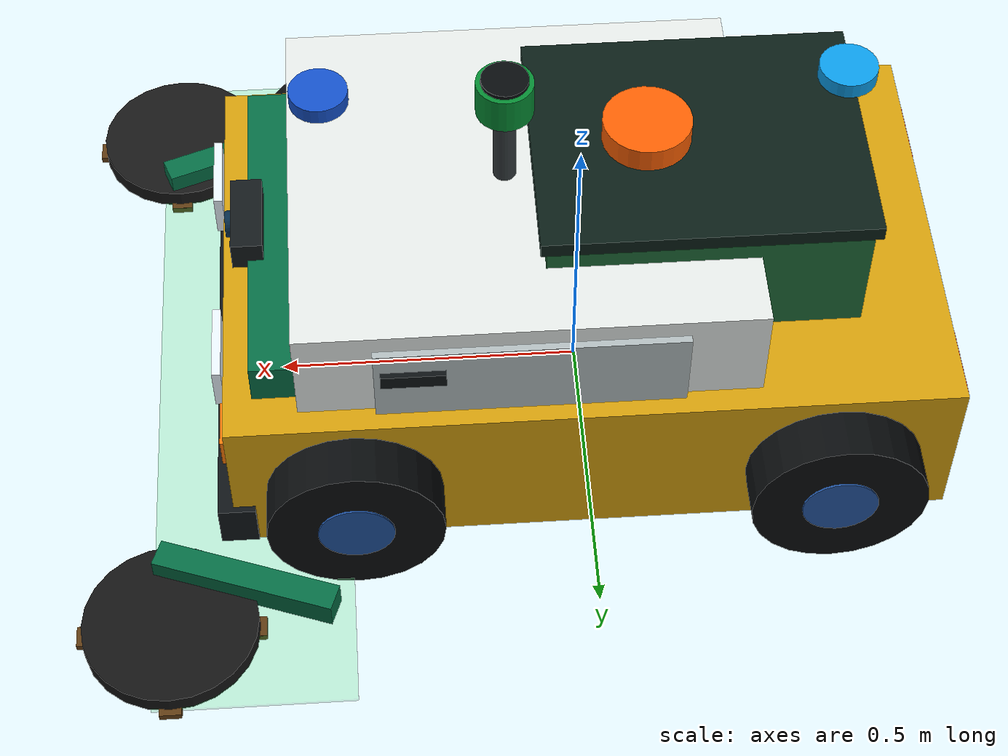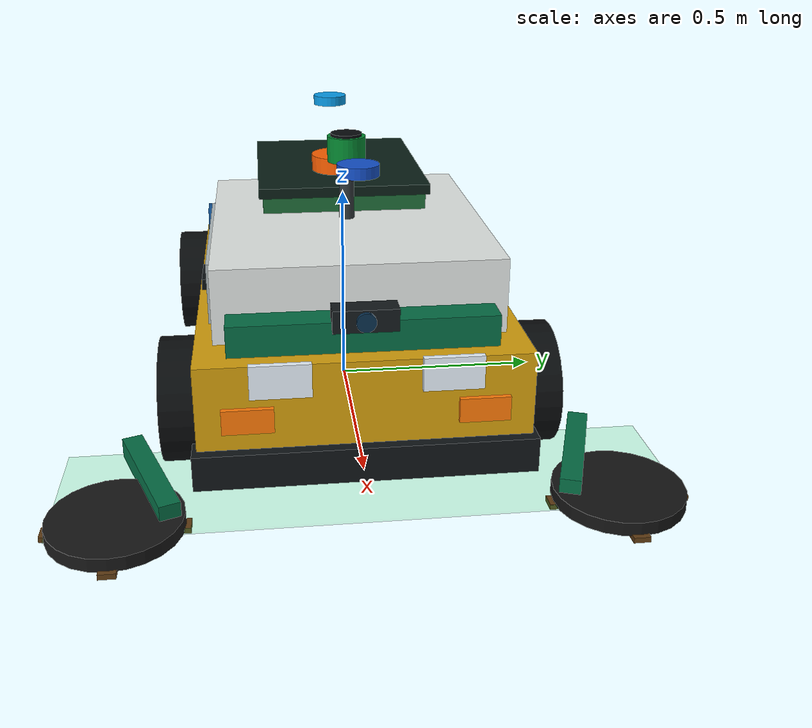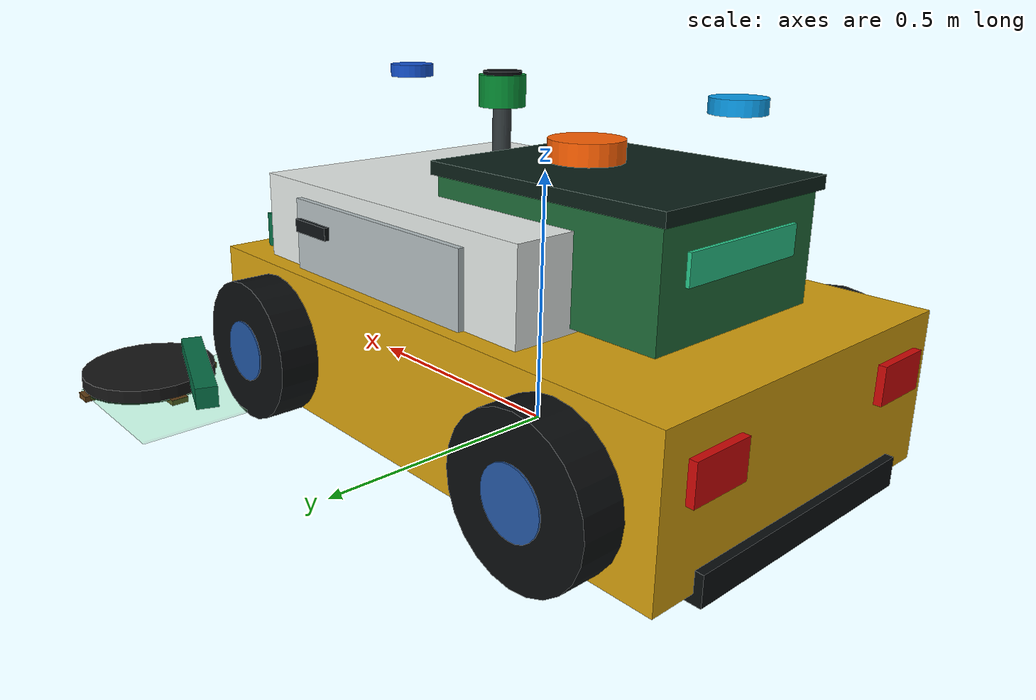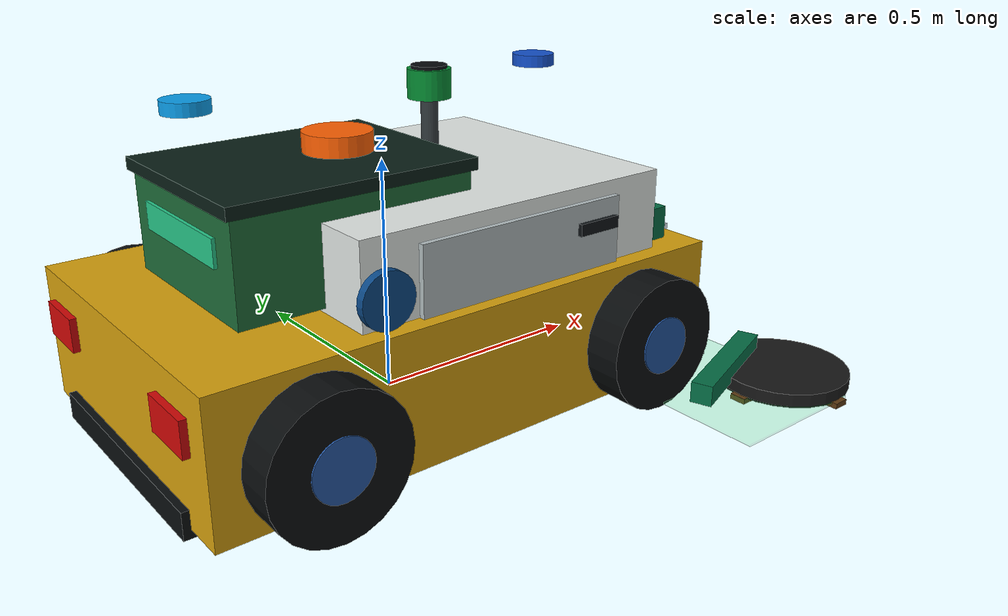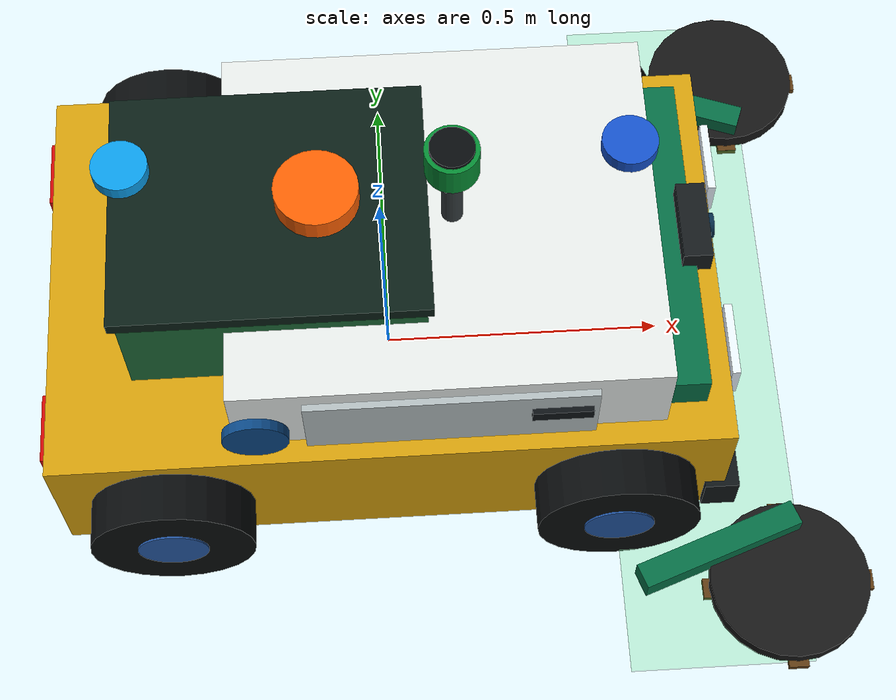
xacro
<?xml version="1.0"?>
<robot name="sanitation_vehicle" xmlns:xacro="http://ros.org/wiki/xacro">

  <!-- Reuse maintained Linorobot2 macros without modifying upstream source. -->
  <xacro:include filename="$(find linorobot2_description)/urdf/sensors/imu.urdf.xacro"/>
  <xacro:include filename="$(find linorobot2_description)/urdf/controllers/skid_steer.urdf.xacro"/>
  <xacro:include filename="$(find sanitation_vehicle_description)/urdf/sanitation_manipulator.urdf.xacro"/>

  <!-- Stage4S separates physical geometry from the DiffDrive estimator / command
       model. Defaults reproduce the Stage4R vehicle exactly. -->
  <xacro:arg name="drive_model" default="ackermann"/>
  <xacro:property name="drive_model_name" value="$(arg drive_model)"/>
  <xacro:if value="${drive_model_name != 'ackermann' and drive_model_name != 'skid_steer_legacy'}">
    <!-- Deliberately undefined: direct xacro use must fail closed for an invalid profile. -->
    <xacro:invalid_drive_model_selection/>
  </xacro:if>
  <xacro:arg name="physical_wheel_radius" default="0.14"/>
  <xacro:arg name="physical_track_width" default="0.80"/>
  <xacro:arg name="drive_wheel_radius" default="0.14"/>
  <xacro:arg name="drive_wheel_separation" default="0.80"/>
  <xacro:arg name="wheel_mu_longitudinal" default="1.0"/>
  <xacro:arg name="wheel_mu_lateral" default="1.0"/>
  <xacro:arg name="slip_compliance_longitudinal" default="0.0"/>
  <xacro:arg name="slip_compliance_lateral" default="0.0"/>
  <xacro:arg name="enable_wheel_slip" default="false"/>
  <xacro:arg name="lidar_samples" default="360"/>
  <xacro:arg name="lidar_update_rate" default="10"/>
  <!-- Frozen dual-antenna GNSS geometry. Gazebo publishes raw NavSat sensor
       measurements; the ROS adapter applies the deterministic RTK profile. -->
  <xacro:arg name="gnss_baseline_m" default="0.80"/>
  <xacro:arg name="gnss_update_rate" default="10"/>
  <!-- Product cleaning envelope: two physical 0.14 m side brushes deployed
       at +/-0.52 m produce a truthful 1.32 m effective width. -->
  <xacro:arg name="cleaning_width" default="1.32"/>
  <xacro:arg name="brush_center_y" default="0.52"/>
  <xacro:arg name="brush_forward_x" default="0.68"/>
  <!-- Offline G2 capture only. Production launch never overrides this false default. -->
  <xacro:arg name="enable_training_gt" default="false"/>
  <!-- Stage5BR4 camera ablation. Defaults are the frozen C0 production candidate. -->
  <xacro:arg name="camera_x" default="0.53"/>
  <xacro:arg name="camera_y" default="0.0"/>
  <xacro:arg name="camera_z" default="0.22"/>
  <xacro:arg name="camera_pitch_rad" default="0.0"/>
  <xacro:arg name="enable_verification_camera" default="false"/>
  <xacro:arg name="verification_camera_update_rate" default="5"/>
  <xacro:arg name="enable_self_mask_gt" default="false"/>
  <xacro:arg name="enable_manipulator" default="false"/>
  <xacro:arg name="verification_camera_x" default="0.30"/>
  <xacro:arg name="verification_camera_y" default="0.0"/>
  <xacro:arg name="verification_camera_z" default="0.70"/>
  <!-- Gazebo camera optical +X needs positive URDF Y rotation to look down;
       the external camera spec continues to report conventional negative pitch. -->
  <xacro:arg name="verification_camera_pitch_rad" default="0.7853981634"/>
  <xacro:arg name="verification_camera_yaw_rad" default="0.0"/>

  <!-- Baseline geometry; replace with measured real vehicle values later. -->
  <xacro:property name="base_length" value="1.15"/>
  <xacro:property name="base_width" value="0.72"/>
  <xacro:property name="base_height" value="0.28"/>
  <xacro:property name="base_mass" value="80.0"/>
  <xacro:property name="physical_wheel_radius" value="$(arg physical_wheel_radius)"/>
  <xacro:property name="physical_track_width" value="$(arg physical_track_width)"/>
  <xacro:property name="drive_wheel_radius" value="$(arg drive_wheel_radius)"/>
  <xacro:property name="drive_wheel_separation" value="$(arg drive_wheel_separation)"/>
  <xacro:property name="wheel_mu_longitudinal" value="$(arg wheel_mu_longitudinal)"/>
  <xacro:property name="wheel_mu_lateral" value="$(arg wheel_mu_lateral)"/>
  <xacro:property name="slip_compliance_longitudinal" value="$(arg slip_compliance_longitudinal)"/>
  <xacro:property name="slip_compliance_lateral" value="$(arg slip_compliance_lateral)"/>
  <xacro:property name="wheel_width" value="0.08"/>
  <xacro:property name="wheel_pos_x" value="0.38"/>
  <xacro:property name="wheel_pos_y" value="${physical_track_width / 2.0}"/>
  <xacro:property name="wheel_pos_z" value="-0.02"/>
  <xacro:property name="wheel_mass" value="3.0"/>
  <xacro:property name="cleaning_width" value="$(arg cleaning_width)"/>
  <xacro:property name="brush_center_y" value="$(arg brush_center_y)"/>
  <xacro:property name="brush_forward_x" value="$(arg brush_forward_x)"/>
  <xacro:property name="lidar_samples" value="$(arg lidar_samples)"/>
  <xacro:property name="lidar_update_rate" value="$(arg lidar_update_rate)"/>
  <xacro:property name="gnss_baseline_m" value="$(arg gnss_baseline_m)"/>
  <xacro:property name="gnss_update_rate" value="$(arg gnss_update_rate)"/>

  <!-- Local primitive chassis avoids the upstream Gazebo-classic visual
       override colliding with URDF materials in Ogre2 / Gazebo Harmonic. -->
  <link name="base_footprint"/>
  <link name="base_link">
    <visual name="lower_chassis_visual">
      <geometry><box size="${base_length} ${base_width} ${base_height}"/></geometry>
      <material name="sanitation_chassis_yellow">
        <color rgba="0.84 0.63 0.05 1.0"/>
      </material>
    </visual>
    <visual name="upper_body_visual">
      <origin xyz="0.10 0 0.20" rpy="0 0 0"/>
      <geometry><box size="0.72 0.64 0.22"/></geometry>
      <material name="sanitation_body_white">
        <color rgba="0.90 0.92 0.91 1.0"/>
      </material>
    </visual>
    <visual name="front_service_panel_visual">
      <origin xyz="0.49 0 0.12" rpy="0 0 0"/>
      <geometry><box size="0.08 0.58 0.18"/></geometry>
      <material name="sanitation_service_green">
        <color rgba="0.02 0.43 0.27 1.0"/>
      </material>
    </visual>
    <visual name="front_bumper_visual">
      <origin xyz="0.57 0 -0.09" rpy="0 0 0"/>
      <geometry><box size="0.06 0.74 0.08"/></geometry>
      <material name="sanitation_bumper_dark">
        <color rgba="0.06 0.08 0.09 1.0"/>
      </material>
    </visual>
    <visual name="left_marker_visual">
      <origin xyz="0.582 0.25 0.02" rpy="0 0 0"/>
      <geometry><box size="0.012 0.11 0.055"/></geometry>
      <material name="sanitation_marker_amber">
        <color rgba="1.0 0.48 0.03 1.0"/>
      </material>
    </visual>
    <visual name="right_marker_visual">
      <origin xyz="0.582 -0.25 0.02" rpy="0 0 0"/>
      <geometry><box size="0.012 0.11 0.055"/></geometry>
      <material name="sanitation_marker_amber_right">
        <color rgba="1.0 0.48 0.03 1.0"/>
      </material>
    </visual>
    <visual name="left_headlamp_visual">
      <origin xyz="0.585 0.18 0.11" rpy="0 0 0"/>
      <geometry><box size="0.014 0.13 0.075"/></geometry>
      <material name="headlamp_white"><color rgba="0.92 0.96 1.0 1.0"/></material>
    </visual>
    <visual name="right_headlamp_visual">
      <origin xyz="0.585 -0.18 0.11" rpy="0 0 0"/>
      <geometry><box size="0.014 0.13 0.075"/></geometry>
      <material name="headlamp_white_right"><color rgba="0.92 0.96 1.0 1.0"/></material>
    </visual>
    <visual name="left_rear_lamp_visual">
      <origin xyz="-0.585 0.25 0.05" rpy="0 0 0"/>
      <geometry><box size="0.014 0.12 0.07"/></geometry>
      <material name="rear_lamp_red"><color rgba="0.82 0.03 0.025 1.0"/></material>
    </visual>
    <visual name="right_rear_lamp_visual">
      <origin xyz="-0.585 -0.25 0.05" rpy="0 0 0"/>
      <geometry><box size="0.014 0.12 0.07"/></geometry>
      <material name="rear_lamp_red_right"><color rgba="0.82 0.03 0.025 1.0"/></material>
    </visual>
    <visual name="left_access_door_visual">
      <origin xyz="0.10 0.326 0.20" rpy="0 0 0"/>
      <geometry><box size="0.48 0.012 0.16"/></geometry>
      <material name="access_door_gray"><color rgba="0.70 0.74 0.75 1.0"/></material>
    </visual>
    <visual name="right_access_door_visual">
      <origin xyz="0.10 -0.326 0.20" rpy="0 0 0"/>
      <geometry><box size="0.48 0.012 0.16"/></geometry>
      <material name="access_door_gray_right"><color rgba="0.70 0.74 0.75 1.0"/></material>
    </visual>
    <visual name="left_door_handle_visual">
      <origin xyz="0.28 0.334 0.23" rpy="0 0 0"/>
      <geometry><box size="0.10 0.016 0.025"/></geometry>
      <material name="door_handle_dark"><color rgba="0.05 0.07 0.08 1.0"/></material>
    </visual>
    <visual name="right_door_handle_visual">
      <origin xyz="0.28 -0.334 0.23" rpy="0 0 0"/>
      <geometry><box size="0.10 0.016 0.025"/></geometry>
      <material name="door_handle_dark_right"><color rgba="0.05 0.07 0.08 1.0"/></material>
    </visual>
    <visual name="charging_port_visual">
      <origin xyz="-0.22 -0.337 0.20" rpy="${pi / 2.0} 0 0"/>
      <geometry><cylinder radius="0.055" length="0.018"/></geometry>
      <material name="charging_port_blue"><color rgba="0.04 0.28 0.52 1.0"/></material>
    </visual>
    <visual name="roof_safety_beacon_visual">
      <origin xyz="-0.10 0 0.36" rpy="0 0 0"/>
      <geometry><cylinder radius="0.07" length="0.11"/></geometry>
      <material name="safety_beacon_amber"><color rgba="1.0 0.38 0.01 0.95"/></material>
    </visual>
    <visual name="rear_suction_intake_visual">
      <origin xyz="-0.50 0 -0.13" rpy="0 0 0"/>
      <geometry><box size="0.18 0.54 0.055"/></geometry>
      <material name="suction_intake_dark"><color rgba="0.035 0.05 0.055 1.0"/></material>
    </visual>
    <visual name="left_safety_stripe_visual">
      <origin xyz="-0.23 0.337 0.08" rpy="0 0 0"/>
      <geometry><box size="0.32 0.010 0.055"/></geometry>
      <material name="safety_stripe_green"><color rgba="0.02 0.52 0.30 1.0"/></material>
    </visual>
    <visual name="right_safety_stripe_visual">
      <origin xyz="-0.23 -0.337 0.08" rpy="0 0 0"/>
      <geometry><box size="0.32 0.010 0.055"/></geometry>
      <material name="safety_stripe_green_right"><color rgba="0.02 0.52 0.30 1.0"/></material>
    </visual>
    <collision name="lower_chassis_collision">
      <geometry>
        <box size="${base_length if drive_model_name == 'skid_steer_legacy' else 0.44} ${base_width} ${base_height}"/>
      </geometry>
    </collision>
    <xacro:if value="${drive_model_name == 'ackermann'}">
      <collision name="lower_chassis_front_stub_collision">
        <origin xyz="0.3975 0 0" rpy="0 0 0"/>
        <geometry><box size="0.355 0.52 0.28"/></geometry>
      </collision>
      <collision name="lower_chassis_rear_stub_collision">
        <origin xyz="-0.3975 0 0" rpy="0 0 0"/>
        <geometry><box size="0.355 0.52 0.28"/></geometry>
      </collision>
    </xacro:if>
    <collision name="upper_body_collision">
      <origin xyz="0.10 0 0.20" rpy="0 0 0"/>
      <geometry><box size="0.72 0.64 0.22"/></geometry>
    </collision>
    <inertial>
      <mass value="${base_mass}"/>
      <inertia
        ixx="${(base_mass / 12.0) * (base_width**2 + base_height**2)}"
        ixy="0" ixz="0"
        iyy="${(base_mass / 12.0) * (base_length**2 + base_height**2)}"
        iyz="0"
        izz="${(base_mass / 12.0) * (base_length**2 + base_width**2)}"/>
    </inertial>
  </link>
  <joint name="base_to_footprint" type="fixed">
    <parent link="base_footprint"/>
    <child link="base_link"/>
    <origin xyz="0 0 ${physical_wheel_radius - wheel_pos_z}" rpy="0 0 0"/>
  </joint>

  <xacro:macro name="sanitation_wheel" params="side pos_x pos_y red green blue">
    <link name="${side}_wheel_link">
      <visual name="tire_visual">
        <origin rpy="${pi / 2.0} 0 0"/>
        <geometry><cylinder radius="${physical_wheel_radius}" length="${wheel_width}"/></geometry>
        <material name="${side}_wheel_material">
          <color rgba="0.035 0.045 0.05 1.0"/>
        </material>
      </visual>
      <visual name="hub_visual">
        <origin rpy="${pi / 2.0} 0 0"/>
        <geometry><cylinder radius="${physical_wheel_radius * 0.43}" length="${wheel_width + 0.006}"/></geometry>
        <material name="${side}_hub_material">
          <color rgba="${red} ${green} ${blue} 1.0"/>
        </material>
      </visual>
      <collision>
        <origin rpy="${pi / 2.0} 0 0"/>
        <geometry><cylinder radius="${physical_wheel_radius}" length="${wheel_width}"/></geometry>
      </collision>
      <inertial>
        <mass value="${wheel_mass}"/>
        <inertia
          ixx="${(wheel_mass / 12.0) * (3.0 * physical_wheel_radius**2 + wheel_width**2)}"
          ixy="0" ixz="0"
          iyy="${0.5 * wheel_mass * physical_wheel_radius**2}"
          iyz="0"
          izz="${(wheel_mass / 12.0) * (3.0 * physical_wheel_radius**2 + wheel_width**2)}"/>
      </inertial>
    </link>
    <joint name="${side}_wheel_joint" type="continuous">
      <axis xyz="0 1 0"/>
      <parent link="base_link"/>
      <child link="${side}_wheel_link"/>
      <origin xyz="${pos_x} ${pos_y} ${wheel_pos_z}" rpy="0 0 0"/>
    </joint>
    <gazebo reference="${side}_wheel_link">
      <mu1>${wheel_mu_longitudinal}</mu1>
      <mu2>${wheel_mu_lateral}</mu2>
    </gazebo>
  </xacro:macro>

  <xacro:macro name="sanitation_ackermann_wheel" params="side pos_x pos_y steered parent_link red green blue">
    <link name="${side}_wheel_link">
      <visual name="tire_visual">
        <geometry><cylinder radius="${physical_wheel_radius}" length="${wheel_width}"/></geometry>
        <material name="${side}_wheel_material">
          <color rgba="0.035 0.045 0.05 1.0"/>
        </material>
      </visual>
      <visual name="hub_visual">
        <geometry><cylinder radius="${physical_wheel_radius * 0.43}" length="${wheel_width + 0.006}"/></geometry>
        <material name="${side}_hub_material">
          <color rgba="${red} ${green} ${blue} 1.0"/>
        </material>
      </visual>
      <collision>
        <geometry><cylinder radius="${physical_wheel_radius}" length="${wheel_width}"/></geometry>
      </collision>
      <inertial>
        <mass value="${wheel_mass}"/>
        <inertia
          ixx="${(wheel_mass / 12.0) * (3.0 * physical_wheel_radius**2 + wheel_width**2)}"
          ixy="0" ixz="0"
          iyy="${(wheel_mass / 12.0) * (3.0 * physical_wheel_radius**2 + wheel_width**2)}"
          iyz="0"
          izz="${0.5 * wheel_mass * physical_wheel_radius**2}"/>
      </inertial>
    </link>
    <xacro:if value="${steered}">
      <link name="${side}_steering_link">
        <inertial>
          <mass value="1.0"/>
          <inertia ixx="0.004" ixy="0" ixz="0" iyy="0.004" iyz="0" izz="0.006"/>
        </inertial>
      </link>
      <joint name="${side}_steering_joint" type="revolute">
        <axis xyz="0 0 1"/>
        <parent link="base_link"/>
        <child link="${side}_steering_link"/>
        <origin xyz="${pos_x} ${pos_y} ${wheel_pos_z}" rpy="0 0 0"/>
        <limit lower="-0.671951764" upper="0.671951764" effort="40.0" velocity="0.8"/>
        <dynamics damping="0.5"/>
      </joint>
    </xacro:if>
    <joint name="${side}_wheel_joint" type="continuous">
      <axis xyz="0 0 1"/>
      <parent link="${parent_link}"/>
      <child link="${side}_wheel_link"/>
      <xacro:if value="${steered}">
        <origin xyz="0 0 0" rpy="${-pi / 2.0} 0 0"/>
      </xacro:if>
      <xacro:if value="${not steered}">
        <origin xyz="${pos_x} ${pos_y} ${wheel_pos_z}" rpy="${-pi / 2.0} 0 0"/>
      </xacro:if>
      <limit effort="30.0" velocity="30.0"/>
      <dynamics damping="0.01"/>
    </joint>
    <gazebo reference="${side}_wheel_link">
      <mu1>0.5</mu1>
      <mu2>${wheel_mu_longitudinal}</mu2>
      <!-- Geometry, joint and contact friction share the wheel-local Z axle,
           matching Gazebo's reference Ackermann model. -->
      <fdir1>0 0 1</fdir1>
    </gazebo>
  </xacro:macro>

  <xacro:if value="${drive_model_name == 'skid_steer_legacy'}">
    <xacro:sanitation_wheel side="front_left" pos_x="${wheel_pos_x}" pos_y="${wheel_pos_y}"
      red="0.12" green="0.32" blue="0.62"/>
    <xacro:sanitation_wheel side="front_right" pos_x="${wheel_pos_x}" pos_y="${-wheel_pos_y}"
      red="0.13" green="0.33" blue="0.63"/>
    <xacro:sanitation_wheel side="rear_left" pos_x="${-wheel_pos_x}" pos_y="${wheel_pos_y}"
      red="0.14" green="0.34" blue="0.64"/>
    <xacro:sanitation_wheel side="rear_right" pos_x="${-wheel_pos_x}" pos_y="${-wheel_pos_y}"
      red="0.15" green="0.35" blue="0.65"/>
  </xacro:if>
  <xacro:if value="${drive_model_name == 'ackermann'}">
    <xacro:sanitation_ackermann_wheel side="front_left" pos_x="${wheel_pos_x}" pos_y="${wheel_pos_y}"
      steered="true" parent_link="front_left_steering_link" red="0.12" green="0.32" blue="0.62"/>
    <xacro:sanitation_ackermann_wheel side="front_right" pos_x="${wheel_pos_x}" pos_y="${-wheel_pos_y}"
      steered="true" parent_link="front_right_steering_link" red="0.13" green="0.33" blue="0.63"/>
    <xacro:sanitation_ackermann_wheel side="rear_left" pos_x="${-wheel_pos_x}" pos_y="${wheel_pos_y}"
      steered="false" parent_link="base_link" red="0.14" green="0.34" blue="0.64"/>
    <xacro:sanitation_ackermann_wheel side="rear_right" pos_x="${-wheel_pos_x}" pos_y="${-wheel_pos_y}"
      steered="false" parent_link="base_link" red="0.15" green="0.35" blue="0.65"/>
  </xacro:if>

  <xacro:imu/>

  <xacro:macro name="sanitation_navsat_antenna" params="name x topic color">
    <link name="gnss_${name}_link">
      <visual name="gnss_${name}_visual">
        <geometry><cylinder radius="0.045" length="0.025"/></geometry>
        <material name="gnss_${name}_material"><color rgba="${color}"/></material>
      </visual>
      <inertial>
        <mass value="0.05"/>
        <inertia ixx="0.000012" ixy="0" ixz="0" iyy="0.000012" iyz="0" izz="0.000020"/>
      </inertial>
    </link>
    <joint name="gnss_${name}_joint" type="fixed">
      <parent link="base_link"/>
      <child link="gnss_${name}_link"/>
      <origin xyz="${x} 0 0.50" rpy="0 0 0"/>
    </joint>
    <gazebo reference="gnss_${name}_link">
      <sensor name="gnss_${name}_navsat" type="navsat">
        <topic>${topic}</topic>
        <update_rate>${gnss_update_rate}</update_rate>
        <always_on>true</always_on>
      </sensor>
    </gazebo>
  </xacro:macro>

  <xacro:sanitation_navsat_antenna
    name="front" x="${gnss_baseline_m / 2.0}"
    topic="gnss/front/fix_raw" color="0.08 0.32 0.80 1.0"/>
  <xacro:sanitation_navsat_antenna
    name="rear" x="${-gnss_baseline_m / 2.0}"
    topic="gnss/rear/fix_raw" color="0.04 0.62 0.92 1.0"/>

  <link name="laser">
    <visual name="lidar_body_visual">
      <geometry><cylinder radius="0.045" length="0.06"/></geometry>
      <material name="sanitation_lidar_green"><color rgba="0.02 0.55 0.20 1.0"/></material>
    </visual>
    <visual name="lidar_cap_visual">
      <origin xyz="0 0 0.031" rpy="0 0 0"/>
      <geometry><cylinder radius="0.037" length="0.012"/></geometry>
      <material name="sanitation_lidar_cap"><color rgba="0.03 0.04 0.05 1.0"/></material>
    </visual>
    <visual name="lidar_mast_visual">
      <origin xyz="0 0 -0.115" rpy="0 0 0"/>
      <geometry><cylinder radius="0.018" length="0.17"/></geometry>
      <material name="sanitation_lidar_mast"><color rgba="0.20 0.23 0.24 1.0"/></material>
    </visual>
    <collision><geometry><cylinder radius="0.045" length="0.06"/></geometry></collision>
    <inertial>
      <mass value="0.1"/>
      <inertia ixx="0.00006" ixy="0" ixz="0" iyy="0.00006" iyz="0" izz="0.00010"/>
    </inertial>
  </link>
  <joint name="laser_to_base_link" type="fixed">
    <parent link="base_link"/>
    <child link="laser"/>
    <origin xyz="0.12 0 0.48" rpy="0 0 0"/>
  </joint>
  <gazebo reference="laser">
    <sensor name="sanitation_gpu_lidar" type="gpu_lidar">
      <topic>scan</topic>
      <update_rate>${lidar_update_rate}</update_rate>
      <always_on>true</always_on>
      <visualize>true</visualize>
      <lidar>
        <scan>
          <horizontal>
            <samples>${lidar_samples}</samples>
            <resolution>1</resolution>
            <min_angle>-3.1416</min_angle>
            <max_angle>3.1416</max_angle>
          </horizontal>
          <vertical>
            <samples>1</samples>
            <resolution>1</resolution>
            <min_angle>0.0</min_angle>
            <max_angle>0.0</max_angle>
          </vertical>
        </scan>
        <range><min>0.08</min><max>12.0</max><resolution>0.01</resolution></range>
      </lidar>
    </sensor>
  </gazebo>

  <link name="camera_link">
    <visual name="camera_housing_visual">
      <geometry><box size="0.05 0.14 0.05"/></geometry>
      <material name="sanitation_camera_housing"><color rgba="0.08 0.10 0.11 1.0"/></material>
    </visual>
    <visual name="camera_lens_visual">
      <origin xyz="0.028 0 0" rpy="0 ${pi / 2.0} 0"/>
      <geometry><cylinder radius="0.021" length="0.012"/></geometry>
      <material name="sanitation_camera_lens"><color rgba="0.03 0.18 0.30 1.0"/></material>
    </visual>
    <collision><geometry><box size="0.05 0.14 0.05"/></geometry></collision>
    <inertial>
      <mass value="0.135"/>
      <inertia ixx="0.00025" ixy="0" ixz="0" iyy="0.00006" iyz="0" izz="0.00025"/>
    </inertial>
  </link>
  <joint name="camera_to_base_link" type="fixed">
    <parent link="base_link"/>
    <child link="camera_link"/>
    <origin xyz="$(arg camera_x) $(arg camera_y) $(arg camera_z)" rpy="0 $(arg camera_pitch_rad) 0"/>
  </joint>
  <link name="camera_depth_link"/>
  <joint name="camera_depth_joint" type="fixed">
    <parent link="camera_link"/>
    <child link="camera_depth_link"/>
    <origin xyz="0 0 0" rpy="0 0 0"/>
  </joint>
  <gazebo reference="camera_link">
    <sensor name="sanitation_rgbd_camera" type="rgbd_camera">
      <topic>camera</topic>
      <update_rate>15</update_rate>
      <always_on>true</always_on>
      <visualize>true</visualize>
      <camera>
        <optical_frame_id>camera_depth_link</optical_frame_id>
        <horizontal_fov>1.50098</horizontal_fov>
        <image><width>640</width><height>480</height><format>R8G8B8</format></image>
        <clip><near>0.3</near><far>100</far></clip>
      </camera>
    </sensor>
    <xacro:if value="$(arg enable_training_gt)">
      <sensor name="g2_semantic_gt" type="segmentation">
        <topic>g2/semantic_gt</topic>
        <gz_frame_id>camera_depth_link</gz_frame_id>
        <update_rate>15</update_rate>
        <always_on>true</always_on>
        <camera>
          <segmentation_type>semantic</segmentation_type>
          <optical_frame_id>camera_depth_link</optical_frame_id>
          <horizontal_fov>1.50098</horizontal_fov>
          <image><width>640</width><height>480</height><format>R8G8B8</format></image>
          <clip><near>0.3</near><far>100</far></clip>
        </camera>
      </sensor>
      <sensor name="g2_instance_gt" type="segmentation">
        <topic>g2/instance_gt</topic>
        <gz_frame_id>camera_depth_link</gz_frame_id>
        <update_rate>15</update_rate>
        <always_on>true</always_on>
        <camera>
          <segmentation_type>instance</segmentation_type>
          <optical_frame_id>camera_depth_link</optical_frame_id>
          <horizontal_fov>1.50098</horizontal_fov>
          <image><width>640</width><height>480</height><format>R8G8B8</format></image>
          <clip><near>0.3</near><far>100</far></clip>
        </camera>
      </sensor>
    </xacro:if>
  </gazebo>

  <!-- C3 verification camera. It is physically and topically independent of
       the forward discovery camera and is absent from the production default. -->
  <xacro:if value="$(arg enable_verification_camera)">
    <link name="verification_camera_link">
      <visual>
        <geometry><box size="0.05 0.14 0.05"/></geometry>
        <material name="sanitation_verification_camera_blue"><color rgba="0.05 0.18 0.55 1.0"/></material>
      </visual>
      <collision><geometry><box size="0.05 0.14 0.05"/></geometry></collision>
      <inertial>
        <mass value="0.135"/>
        <inertia ixx="0.00025" ixy="0" ixz="0" iyy="0.00006" iyz="0" izz="0.00025"/>
      </inertial>
    </link>
    <joint name="verification_camera_to_base_link" type="fixed">
      <parent link="base_link"/>
      <child link="verification_camera_link"/>
      <origin xyz="$(arg verification_camera_x) $(arg verification_camera_y) $(arg verification_camera_z)"
              rpy="0 $(arg verification_camera_pitch_rad) $(arg verification_camera_yaw_rad)"/>
    </joint>
    <link name="verification_camera_depth_link"/>
    <joint name="verification_camera_depth_joint" type="fixed">
      <parent link="verification_camera_link"/>
      <child link="verification_camera_depth_link"/>
      <origin xyz="0 0 0" rpy="0 0 0"/>
    </joint>
    <gazebo reference="verification_camera_link">
      <sensor name="sanitation_verification_rgbd_camera" type="rgbd_camera">
        <topic>verification_camera</topic>
        <update_rate>$(arg verification_camera_update_rate)</update_rate><always_on>true</always_on><visualize>true</visualize>
        <camera>
          <optical_frame_id>verification_camera_depth_link</optical_frame_id>
          <horizontal_fov>1.50098</horizontal_fov>
          <image><width>640</width><height>480</height><format>R8G8B8</format></image>
          <clip><near>0.3</near><far>100</far></clip>
        </camera>
      </sensor>
      <xacro:if value="$(arg enable_training_gt)">
        <sensor name="g2_verification_semantic_gt" type="segmentation">
          <topic>g2/verification_semantic_gt</topic><gz_frame_id>verification_camera_depth_link</gz_frame_id>
          <update_rate>$(arg verification_camera_update_rate)</update_rate><always_on>true</always_on>
          <camera><segmentation_type>semantic</segmentation_type><optical_frame_id>verification_camera_depth_link</optical_frame_id><horizontal_fov>1.50098</horizontal_fov><image><width>640</width><height>480</height><format>R8G8B8</format></image><clip><near>0.3</near><far>100</far></clip></camera>
        </sensor>
        <sensor name="g2_verification_instance_gt" type="segmentation">
          <topic>g2/verification_instance_gt</topic><gz_frame_id>verification_camera_depth_link</gz_frame_id>
          <update_rate>$(arg verification_camera_update_rate)</update_rate><always_on>true</always_on>
          <camera><segmentation_type>instance</segmentation_type><optical_frame_id>verification_camera_depth_link</optical_frame_id><horizontal_fov>1.50098</horizontal_fov><image><width>640</width><height>480</height><format>R8G8B8</format></image><clip><near>0.3</near><far>100</far></clip></camera>
        </sensor>
      </xacro:if>
    </gazebo>
  </xacro:if>

  <!-- Exactly one joint command writer per profile. Ackermann loads the
       single gz-sim-ackermann-steering-system writer and never a DiffDrive;
       legacy keeps the frozen DiffDrive writer. -->
  <xacro:if value="${drive_model_name == 'skid_steer_legacy'}">
    <xacro:diff_drive_controller
      wheel_separation="${drive_wheel_separation}"
      wheel_radius="${drive_wheel_radius}"
    />
  </xacro:if>
  <xacro:if value="${drive_model_name == 'ackermann'}">
    <gazebo>
      <plugin filename="gz-sim-ackermann-steering-system" name="gz::sim::systems::AckermannSteering">
        <left_joint>rear_left_wheel_joint</left_joint>
        <right_joint>rear_right_wheel_joint</right_joint>
        <left_steering_joint>front_left_steering_joint</left_steering_joint>
        <right_steering_joint>front_right_steering_joint</right_steering_joint>
        <steering_limit>0.5606176830324433</steering_limit>
        <steer_p_gain>3.0</steer_p_gain>
        <wheel_base>0.76</wheel_base>
        <wheel_separation>0.80</wheel_separation>
        <kingpin_width>0.80</kingpin_width>
        <wheel_radius>0.14</wheel_radius>
        <topic>/cmd_vel</topic>
        <odom_topic>/wheel/odom_raw</odom_topic>
        <tf_topic>/wheel/odom_raw_tf</tf_topic>
        <frame_id>odom</frame_id>
        <child_frame_id>base_footprint</child_frame_id>
        <odom_publish_frequency>50</odom_publish_frequency>
        <min_velocity>-0.75</min_velocity>
        <max_velocity>1.0</max_velocity>
        <min_acceleration>-0.8</min_acceleration>
        <max_acceleration>0.8</max_acceleration>
        <min_jerk>-2.0</min_jerk>
        <max_jerk>2.0</max_jerk>
      </plugin>
    </gazebo>
  </xacro:if>

  <!-- Publish measured steering and wheel states for odometry auditing and
       read-only operator telemetry. This observer does not command joints. -->
  <gazebo>
    <plugin filename="gz-sim-joint-state-publisher-system" name="gz::sim::systems::JointStatePublisher">
      <topic>/joint_states</topic>
    </plugin>
  </gazebo>

  <!-- Disabled by default so the split-parameter baseline exactly preserves
       Stage4R contact behavior. It is enabled only for an explicit slip scan. -->
  <xacro:if value="$(arg enable_wheel_slip)">
    <xacro:if value="${drive_model_name == 'skid_steer_legacy'}">
    <gazebo>
      <plugin filename="gz-sim-wheel-slip-system" name="gz::sim::systems::WheelSlip">
        <xacro:macro name="slip_wheel" params="link_name">
          <wheel link_name="${link_name}">
            <wheel_radius>${physical_wheel_radius}</wheel_radius>
            <slip_compliance_lateral>${slip_compliance_lateral}</slip_compliance_lateral>
            <slip_compliance_longitudinal>${slip_compliance_longitudinal}</slip_compliance_longitudinal>
            <wheel_normal_force>250.0</wheel_normal_force>
          </wheel>
        </xacro:macro>
        <xacro:slip_wheel link_name="front_left_wheel_link"/>
        <xacro:slip_wheel link_name="front_right_wheel_link"/>
        <xacro:slip_wheel link_name="rear_left_wheel_link"/>
        <xacro:slip_wheel link_name="rear_right_wheel_link"/>
      </plugin>
    </gazebo>
    </xacro:if>
  </xacro:if>

  <gazebo>
    <plugin
      filename="gz-sim-odometry-publisher-system"
      name="gz::sim::systems::OdometryPublisher">
      <odom_publish_frequency>50</odom_publish_frequency>
      <odom_topic>/ground_truth/model_odom_raw</odom_topic>
      <odom_frame>world</odom_frame>
      <robot_base_frame>sanitation_vehicle/base_footprint</robot_base_frame>
      <dimensions>2</dimensions>
    </plugin>
  </gazebo>

  <xacro:if value="$(arg enable_self_mask_gt)">
    <gazebo>
      <plugin filename="gz-sim-label-system" name="gz::sim::systems::Label">
        <label>250</label>
      </plugin>
    </gazebo>
  </xacro:if>

  <!-- 40 L bin: 0.50 * 0.40 * 0.20 = 0.040 m^3. -->
  <link name="dust_bin_link">
    <visual name="dust_bin_body_visual">
      <origin xyz="0 0 0"/>
      <geometry><box size="0.50 0.40 0.20"/></geometry>
      <material name="bin_green"><color rgba="0.12 0.42 0.22 1.0"/></material>
    </visual>
    <visual name="dust_bin_lid_visual">
      <origin xyz="0 0 0.112"/>
      <geometry><box size="0.52 0.42 0.025"/></geometry>
      <material name="bin_lid_dark"><color rgba="0.04 0.12 0.09 1.0"/></material>
    </visual>
    <visual name="dust_bin_status_strip_visual">
      <origin xyz="-0.251 0 0.025"/>
      <geometry><box size="0.012 0.28 0.055"/></geometry>
      <material name="bin_status_strip"><color rgba="0.15 0.78 0.54 1.0"/></material>
    </visual>
    <collision>
      <origin xyz="0 0 0"/>
      <geometry><box size="0.50 0.40 0.20"/></geometry>
    </collision>
    <inertial>
      <mass value="8.0"/>
      <inertia ixx="0.133" ixy="0" ixz="0" iyy="0.193" iyz="0" izz="0.273"/>
    </inertial>
  </link>
  <joint name="dust_bin_joint" type="fixed">
    <parent link="base_link"/>
    <child link="dust_bin_link"/>
    <origin xyz="-0.18 0 0.25" rpy="0 0 0"/>
  </joint>

  <!-- Side-brush links carry both visual and collision geometry.  The product
       default is the deployed envelope; a legacy caller must opt into another
       position explicitly. -->
  <link name="left_brush_link">
    <visual name="left_brush_support_arm_visual">
      <origin xyz="-0.12 -0.06 0.025" rpy="0 0 -0.35"/>
      <geometry><box size="0.30 0.045 0.045"/></geometry>
      <material name="left_brush_support_green"><color rgba="0.02 0.43 0.27 1.0"/></material>
    </visual>
    <visual name="left_brush_hub_visual">
      <geometry><cylinder radius="0.14" length="0.03"/></geometry>
      <material name="left_brush_dark"><color rgba="0.08 0.08 0.08 1.0"/></material>
    </visual>
    <visual name="left_brush_cross_visual">
      <origin xyz="0 0 -0.018"/>
      <geometry><box size="0.30 0.035 0.012"/></geometry>
      <material name="left_brush_bristle"><color rgba="0.38 0.24 0.08 1.0"/></material>
    </visual>
    <visual name="left_brush_cross_visual_2">
      <origin xyz="0 0 -0.018" rpy="0 0 ${pi / 2.0}"/>
      <geometry><box size="0.30 0.035 0.012"/></geometry>
      <material name="left_brush_bristle_2"><color rgba="0.38 0.24 0.08 1.0"/></material>
    </visual>
    <collision>
      <origin xyz="0 0 0.04"/>
      <geometry><cylinder radius="0.14" length="0.03"/></geometry>
    </collision>
    <inertial>
      <mass value="1.0"/>
      <inertia ixx="0.00495" ixy="0" ixz="0" iyy="0.00495" iyz="0" izz="0.0098"/>
    </inertial>
  </link>
  <joint name="left_brush_joint" type="fixed">
    <parent link="base_link"/>
    <child link="left_brush_link"/>
    <origin xyz="$(arg brush_forward_x) ${brush_center_y} -0.14" rpy="0 0 0"/>
  </joint>

  <link name="right_brush_link">
    <visual name="right_brush_support_arm_visual">
      <origin xyz="-0.12 0.06 0.025" rpy="0 0 0.35"/>
      <geometry><box size="0.30 0.045 0.045"/></geometry>
      <material name="right_brush_support_green"><color rgba="0.02 0.43 0.27 1.0"/></material>
    </visual>
    <visual name="right_brush_hub_visual">
      <geometry><cylinder radius="0.14" length="0.03"/></geometry>
      <material name="right_brush_dark"><color rgba="0.09 0.09 0.09 1.0"/></material>
    </visual>
    <visual name="right_brush_cross_visual">
      <origin xyz="0 0 -0.018"/>
      <geometry><box size="0.30 0.035 0.012"/></geometry>
      <material name="right_brush_bristle"><color rgba="0.38 0.24 0.08 1.0"/></material>
    </visual>
    <visual name="right_brush_cross_visual_2">
      <origin xyz="0 0 -0.018" rpy="0 0 ${pi / 2.0}"/>
      <geometry><box size="0.30 0.035 0.012"/></geometry>
      <material name="right_brush_bristle_2"><color rgba="0.38 0.24 0.08 1.0"/></material>
    </visual>
    <collision>
      <origin xyz="0 0 0.04"/>
      <geometry><cylinder radius="0.14" length="0.03"/></geometry>
    </collision>
    <inertial>
      <mass value="1.0"/>
      <inertia ixx="0.00495" ixy="0" ixz="0" iyy="0.00495" iyz="0" izz="0.0098"/>
    </inertial>
  </link>
  <joint name="right_brush_joint" type="fixed">
    <parent link="base_link"/>
    <child link="right_brush_link"/>
    <origin xyz="$(arg brush_forward_x) ${-brush_center_y} -0.14" rpy="0 0 0"/>
  </joint>

  <!-- Non-colliding visualization of the nominal cleaning footprint. -->
  <link name="cleaning_footprint_link">
    <visual>
      <origin xyz="0 0 0"/>
      <geometry><box size="0.32 ${cleaning_width} 0.005"/></geometry>
      <material name="cleaning_zone"><color rgba="0.1 0.8 0.3 0.18"/></material>
    </visual>
  </link>
  <joint name="cleaning_footprint_joint" type="fixed">
    <parent link="base_link"/>
    <child link="cleaning_footprint_link"/>
    <origin xyz="0.55 0 -0.155" rpy="0 0 0"/>
  </joint>

  <!-- Mounting point reserved for a future manipulator. -->
  <link name="arm_mount_link"/>
  <joint name="arm_mount_joint" type="fixed">
    <parent link="base_link"/>
    <child link="arm_mount_link"/>
    <origin xyz="0.10 0 0.32" rpy="0 0 0"/>
  </joint>

  <xacro:if value="$(arg enable_manipulator)">
    <xacro:sanitation_manipulator parent="arm_mount_link"/>
  </xacro:if>

</robot>

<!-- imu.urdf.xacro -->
<robot xmlns:xacro="http://ros.org/wiki/xacro">
  <xacro:macro name="imu">
    <link name="imu_link"/>

    <joint name="imu_to_base_link" type="fixed">
      <parent link="base_link"/>
      <child link="imu_link"/>
      <origin xyz="0 0 0" rpy="0 0 0"/>
    </joint>

    <gazebo>
      <plugin filename="gz-sim-imu-system" name="gz::sim::systems::Imu">
      </plugin>
    </gazebo>

    <gazebo reference="imu_link">
      <sensor name="imu_sensor" type="imu">
        <topic>$(arg namespace)/imu/data</topic>
        <update_rate>50</update_rate>
        <always_on>true</always_on>
        <visualize>true</visualize>
      </sensor>
    </gazebo>
  </xacro:macro>
</robot>
